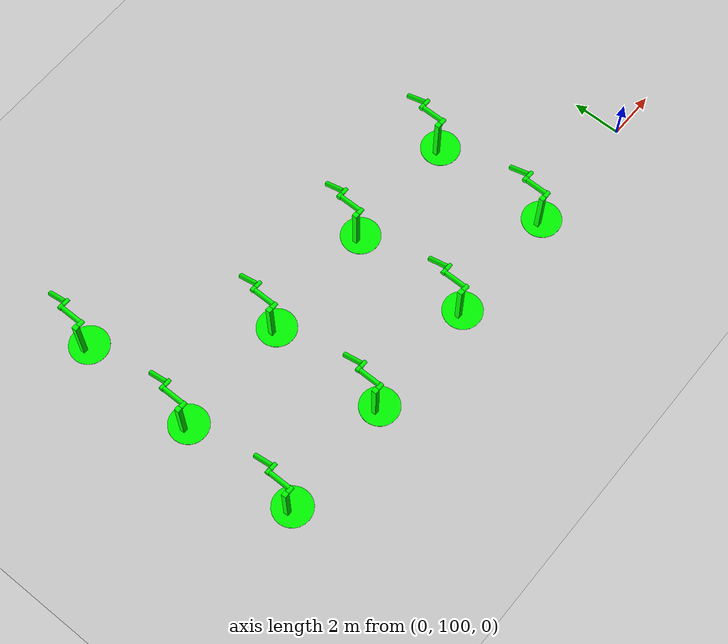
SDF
<sdf version="1.6">
 <world name="double_pendulums">
  <model name="ground_plane">
   <static>true</static>
   <link name="link">
    <collision name="collision">
     <geometry><plane><normal>0 0 1</normal><size>100 100</size></plane></geometry>
    </collision>
    <visual name="visual">
     <geometry><plane><normal>0 0 1</normal><size>100 100</size></plane></geometry>
     <material>
      <ambient>0.8 0.8 0.8 1</ambient>
      <diffuse>0.8 0.8 0.8 1</diffuse>
      <specular>0.8 0.8 0.8 1</specular>
     </material>
    </visual>
   </link>
  </model>
  <model name="dbl_pendulum_506">
   <pose>-20 100 0 0 0 0</pose>
   <link name="base">
    <inertial><mass>100</mass></inertial>
    <visual name="vis_plate_on_ground">
     <pose>0 0 0.01 0 0 0</pose>
     <geometry><cylinder><radius>0.8</radius><length>0.02</length></cylinder></geometry>
     <material><ambient>0 1 0 1</ambient><diffuse>0 1 0 1</diffuse><specular>0 1 0 1</specular></material>
    </visual>
    <visual name="vis_pole">
     <pose>-0.275 0 1.1 0 0 0</pose>
     <geometry><box><size>0.2 0.2 2.2</size></box></geometry>
     <material><ambient>0 1 0 1</ambient><diffuse>0 1 0 1</diffuse><specular>0 1 0 1</specular></material>
    </visual>
    <collision name="col_plate_on_ground">
     <pose>0 0 0.01 0 0 0</pose>
     <geometry><cylinder><radius>0.8</radius><length>0.02</length></cylinder></geometry>
    </collision>
    <collision name="col_pole">
     <pose>-0.275 0 1.1 0 0 0</pose>
     <geometry><box><size>0.2 0.2 2.2</size></box></geometry>
    </collision>
   </link>
   <link name="upper_link">
    <pose>0 0 2.1 -1.5708 0 0</pose>
    <inertial><pose>0 0 0.5 0 0 0</pose></inertial>
    <visual name="vis_upper_joint">
     <pose>-0.05 0 0 0 1.5708 0</pose>
     <geometry><cylinder><radius>0.1</radius><length>0.3</length></cylinder></geometry>
     <material><ambient>0 1 0 1</ambient><diffuse>0 1 0 1</diffuse><specular>0 1 0 1</specular></material>
    </visual>
    <visual name="vis_lower_joint">
     <pose>0 0 1.0 0 1.5708 0</pose>
     <geometry><cylinder><radius>0.1</radius><length>0.2</length></cylinder></geometry>
     <material><ambient>0 1 0 1</ambient><diffuse>0 1 0 1</diffuse><specular>0 1 0 1</specular></material>
    </visual>
    <visual name="vis_cylinder">
     <pose>0 0 0.5 0 0 0</pose>
     <geometry><cylinder><radius>0.1</radius><length>0.9</length></cylinder></geometry>
     <material><ambient>0 1 0 1</ambient><diffuse>0 1 0 1</diffuse><specular>0 1 0 1</specular></material>
    </visual>
    <collision name="col_upper_joint">
     <pose>-0.05 0 0 0 1.5708 0</pose>
     <geometry><cylinder><radius>0.1</radius><length>0.3</length></cylinder></geometry>
    </collision>
    <collision name="col_lower_joint">
     <pose>0 0 1.0 0 1.5708 0</pose>
     <geometry><cylinder><radius>0.1</radius><length>0.2</length></cylinder></geometry>
    </collision>
    <collision name="col_cylinder">
     <pose>0 0 0.5 0 0 0</pose>
     <geometry><cylinder><radius>0.1</radius><length>0.9</length></cylinder></geometry>
    </collision>
   </link>
   <link name="lower_link">
    <pose>0.25 1.0 2.1 -2 0 0</pose>
    <inertial><pose>0 0 0.5 0 0 0</pose></inertial>
    <visual name="vis_lower_joint">
     <pose>0 0 0 0 1.5708 0</pose>
     <geometry><cylinder><radius>0.08</radius><length>0.3</length></cylinder></geometry>
     <material><ambient>0 1 0 1</ambient><diffuse>0 1 0 1</diffuse><specular>0 1 0 1</specular></material>
    </visual>
    <visual name="vis_cylinder">
     <pose>0 0 0.5 0 0 0</pose>
     <geometry><cylinder><radius>0.1</radius><length>0.9</length></cylinder></geometry>
     <material><ambient>0 1 0 1</ambient><diffuse>0 1 0 1</diffuse><specular>0 1 0 1</specular></material>
    </visual>
    <collision name="col_lower_joint">
     <pose>0 0 0 0 1.5708 0</pose>
     <geometry><cylinder><radius>0.08</radius><length>0.3</length></cylinder></geometry>
    </collision>
    <collision name="col_cylinder">
     <pose>0 0 0.5 0 0 0</pose>
     <geometry><cylinder><radius>0.1</radius><length>0.9</length></cylinder></geometry>
    </collision>
   </link>
   <joint name="upper_joint" type="revolute">
    <parent>base</parent>
    <child>upper_link</child>
    <axis><xyz>1.0 0 0</xyz></axis>
   </joint>
   <joint name="lower_joint" type="revolute">
    <parent>upper_link</parent>
    <child>lower_link</child>
    <axis><xyz>1.0 0 0</xyz></axis>
   </joint>
  </model>
  <model name="dbl_pendulum_507">
   <pose>-15 100 0 0 0 0</pose>
   <link name="base">
    <inertial><mass>100</mass></inertial>
    <visual name="vis_plate_on_ground">
     <pose>0 0 0.01 0 0 0</pose>
     <geometry><cylinder><radius>0.8</radius><length>0.02</length></cylinder></geometry>
     <material><ambient>0 1 0 1</ambient><diffuse>0 1 0 1</diffuse><specular>0 1 0 1</specular></material>
    </visual>
    <visual name="vis_pole">
     <pose>-0.275 0 1.1 0 0 0</pose>
     <geometry><box><size>0.2 0.2 2.2</size></box></geometry>
     <material><ambient>0 1 0 1</ambient><diffuse>0 1 0 1</diffuse><specular>0 1 0 1</specular></material>
    </visual>
    <collision name="col_plate_on_ground">
     <pose>0 0 0.01 0 0 0</pose>
     <geometry><cylinder><radius>0.8</radius><length>0.02</length></cylinder></geometry>
    </collision>
    <collision name="col_pole">
     <pose>-0.275 0 1.1 0 0 0</pose>
     <geometry><box><size>0.2 0.2 2.2</size></box></geometry>
    </collision>
   </link>
   <link name="upper_link">
    <pose>0 0 2.1 -1.5708 0 0</pose>
    <inertial><pose>0 0 0.5 0 0 0</pose></inertial>
    <visual name="vis_upper_joint">
     <pose>-0.05 0 0 0 1.5708 0</pose>
     <geometry><cylinder><radius>0.1</radius><length>0.3</length></cylinder></geometry>
     <material><ambient>0 1 0 1</ambient><diffuse>0 1 0 1</diffuse><specular>0 1 0 1</specular></material>
    </visual>
    <visual name="vis_lower_joint">
     <pose>0 0 1.0 0 1.5708 0</pose>
     <geometry><cylinder><radius>0.1</radius><length>0.2</length></cylinder></geometry>
     <material><ambient>0 1 0 1</ambient><diffuse>0 1 0 1</diffuse><specular>0 1 0 1</specular></material>
    </visual>
    <visual name="vis_cylinder">
     <pose>0 0 0.5 0 0 0</pose>
     <geometry><cylinder><radius>0.1</radius><length>0.9</length></cylinder></geometry>
     <material><ambient>0 1 0 1</ambient><diffuse>0 1 0 1</diffuse><specular>0 1 0 1</specular></material>
    </visual>
    <collision name="col_upper_joint">
     <pose>-0.05 0 0 0 1.5708 0</pose>
     <geometry><cylinder><radius>0.1</radius><length>0.3</length></cylinder></geometry>
    </collision>
    <collision name="col_lower_joint">
     <pose>0 0 1.0 0 1.5708 0</pose>
     <geometry><cylinder><radius>0.1</radius><length>0.2</length></cylinder></geometry>
    </collision>
    <collision name="col_cylinder">
     <pose>0 0 0.5 0 0 0</pose>
     <geometry><cylinder><radius>0.1</radius><length>0.9</length></cylinder></geometry>
    </collision>
   </link>
   <link name="lower_link">
    <pose>0.25 1.0 2.1 -2 0 0</pose>
    <inertial><pose>0 0 0.5 0 0 0</pose></inertial>
    <visual name="vis_lower_joint">
     <pose>0 0 0 0 1.5708 0</pose>
     <geometry><cylinder><radius>0.08</radius><length>0.3</length></cylinder></geometry>
     <material><ambient>0 1 0 1</ambient><diffuse>0 1 0 1</diffuse><specular>0 1 0 1</specular></material>
    </visual>
    <visual name="vis_cylinder">
     <pose>0 0 0.5 0 0 0</pose>
     <geometry><cylinder><radius>0.1</radius><length>0.9</length></cylinder></geometry>
     <material><ambient>0 1 0 1</ambient><diffuse>0 1 0 1</diffuse><specular>0 1 0 1</specular></material>
    </visual>
    <collision name="col_lower_joint">
     <pose>0 0 0 0 1.5708 0</pose>
     <geometry><cylinder><radius>0.08</radius><length>0.3</length></cylinder></geometry>
    </collision>
    <collision name="col_cylinder">
     <pose>0 0 0.5 0 0 0</pose>
     <geometry><cylinder><radius>0.1</radius><length>0.9</length></cylinder></geometry>
    </collision>
   </link>
   <joint name="upper_joint" type="revolute">
    <parent>base</parent>
    <child>upper_link</child>
    <axis><xyz>1.0 0 0</xyz></axis>
   </joint>
   <joint name="lower_joint" type="revolute">
    <parent>upper_link</parent>
    <child>lower_link</child>
    <axis><xyz>1.0 0 0</xyz></axis>
   </joint>
  </model>
  <model name="dbl_pendulum_508">
   <pose>-10 100 0 0 0 0</pose>
   <link name="base">
    <inertial><mass>100</mass></inertial>
    <visual name="vis_plate_on_ground">
     <pose>0 0 0.01 0 0 0</pose>
     <geometry><cylinder><radius>0.8</radius><length>0.02</length></cylinder></geometry>
     <material><ambient>0 1 0 1</ambient><diffuse>0 1 0 1</diffuse><specular>0 1 0 1</specular></material>
    </visual>
    <visual name="vis_pole">
     <pose>-0.275 0 1.1 0 0 0</pose>
     <geometry><box><size>0.2 0.2 2.2</size></box></geometry>
     <material><ambient>0 1 0 1</ambient><diffuse>0 1 0 1</diffuse><specular>0 1 0 1</specular></material>
    </visual>
    <collision name="col_plate_on_ground">
     <pose>0 0 0.01 0 0 0</pose>
     <geometry><cylinder><radius>0.8</radius><length>0.02</length></cylinder></geometry>
    </collision>
    <collision name="col_pole">
     <pose>-0.275 0 1.1 0 0 0</pose>
     <geometry><box><size>0.2 0.2 2.2</size></box></geometry>
    </collision>
   </link>
   <link name="upper_link">
    <pose>0 0 2.1 -1.5708 0 0</pose>
    <inertial><pose>0 0 0.5 0 0 0</pose></inertial>
    <visual name="vis_upper_joint">
     <pose>-0.05 0 0 0 1.5708 0</pose>
     <geometry><cylinder><radius>0.1</radius><length>0.3</length></cylinder></geometry>
     <material><ambient>0 1 0 1</ambient><diffuse>0 1 0 1</diffuse><specular>0 1 0 1</specular></material>
    </visual>
    <visual name="vis_lower_joint">
     <pose>0 0 1.0 0 1.5708 0</pose>
     <geometry><cylinder><radius>0.1</radius><length>0.2</length></cylinder></geometry>
     <material><ambient>0 1 0 1</ambient><diffuse>0 1 0 1</diffuse><specular>0 1 0 1</specular></material>
    </visual>
    <visual name="vis_cylinder">
     <pose>0 0 0.5 0 0 0</pose>
     <geometry><cylinder><radius>0.1</radius><length>0.9</length></cylinder></geometry>
     <material><ambient>0 1 0 1</ambient><diffuse>0 1 0 1</diffuse><specular>0 1 0 1</specular></material>
    </visual>
    <collision name="col_upper_joint">
     <pose>-0.05 0 0 0 1.5708 0</pose>
     <geometry><cylinder><radius>0.1</radius><length>0.3</length></cylinder></geometry>
    </collision>
    <collision name="col_lower_joint">
     <pose>0 0 1.0 0 1.5708 0</pose>
     <geometry><cylinder><radius>0.1</radius><length>0.2</length></cylinder></geometry>
    </collision>
    <collision name="col_cylinder">
     <pose>0 0 0.5 0 0 0</pose>
     <geometry><cylinder><radius>0.1</radius><length>0.9</length></cylinder></geometry>
    </collision>
   </link>
   <link name="lower_link">
    <pose>0.25 1.0 2.1 -2 0 0</pose>
    <inertial><pose>0 0 0.5 0 0 0</pose></inertial>
    <visual name="vis_lower_joint">
     <pose>0 0 0 0 1.5708 0</pose>
     <geometry><cylinder><radius>0.08</radius><length>0.3</length></cylinder></geometry>
     <material><ambient>0 1 0 1</ambient><diffuse>0 1 0 1</diffuse><specular>0 1 0 1</specular></material>
    </visual>
    <visual name="vis_cylinder">
     <pose>0 0 0.5 0 0 0</pose>
     <geometry><cylinder><radius>0.1</radius><length>0.9</length></cylinder></geometry>
     <material><ambient>0 1 0 1</ambient><diffuse>0 1 0 1</diffuse><specular>0 1 0 1</specular></material>
    </visual>
    <collision name="col_lower_joint">
     <pose>0 0 0 0 1.5708 0</pose>
     <geometry><cylinder><radius>0.08</radius><length>0.3</length></cylinder></geometry>
    </collision>
    <collision name="col_cylinder">
     <pose>0 0 0.5 0 0 0</pose>
     <geometry><cylinder><radius>0.1</radius><length>0.9</length></cylinder></geometry>
    </collision>
   </link>
   <joint name="upper_joint" type="revolute">
    <parent>base</parent>
    <child>upper_link</child>
    <axis><xyz>1.0 0 0</xyz></axis>
   </joint>
   <joint name="lower_joint" type="revolute">
    <parent>upper_link</parent>
    <child>lower_link</child>
    <axis><xyz>1.0 0 0</xyz></axis>
   </joint>
  </model>
  <model name="dbl_pendulum_509">
   <pose>-5 100 0 0 0 0</pose>
   <link name="base">
    <inertial><mass>100</mass></inertial>
    <visual name="vis_plate_on_ground">
     <pose>0 0 0.01 0 0 0</pose>
     <geometry><cylinder><radius>0.8</radius><length>0.02</length></cylinder></geometry>
     <material><ambient>0 1 0 1</ambient><diffuse>0 1 0 1</diffuse><specular>0 1 0 1</specular></material>
    </visual>
    <visual name="vis_pole">
     <pose>-0.275 0 1.1 0 0 0</pose>
     <geometry><box><size>0.2 0.2 2.2</size></box></geometry>
     <material><ambient>0 1 0 1</ambient><diffuse>0 1 0 1</diffuse><specular>0 1 0 1</specular></material>
    </visual>
    <collision name="col_plate_on_ground">
     <pose>0 0 0.01 0 0 0</pose>
     <geometry><cylinder><radius>0.8</radius><length>0.02</length></cylinder></geometry>
    </collision>
    <collision name="col_pole">
     <pose>-0.275 0 1.1 0 0 0</pose>
     <geometry><box><size>0.2 0.2 2.2</size></box></geometry>
    </collision>
   </link>
   <link name="upper_link">
    <pose>0 0 2.1 -1.5708 0 0</pose>
    <inertial><pose>0 0 0.5 0 0 0</pose></inertial>
    <visual name="vis_upper_joint">
     <pose>-0.05 0 0 0 1.5708 0</pose>
     <geometry><cylinder><radius>0.1</radius><length>0.3</length></cylinder></geometry>
     <material><ambient>0 1 0 1</ambient><diffuse>0 1 0 1</diffuse><specular>0 1 0 1</specular></material>
    </visual>
    <visual name="vis_lower_joint">
     <pose>0 0 1.0 0 1.5708 0</pose>
     <geometry><cylinder><radius>0.1</radius><length>0.2</length></cylinder></geometry>
     <material><ambient>0 1 0 1</ambient><diffuse>0 1 0 1</diffuse><specular>0 1 0 1</specular></material>
    </visual>
    <visual name="vis_cylinder">
     <pose>0 0 0.5 0 0 0</pose>
     <geometry><cylinder><radius>0.1</radius><length>0.9</length></cylinder></geometry>
     <material><ambient>0 1 0 1</ambient><diffuse>0 1 0 1</diffuse><specular>0 1 0 1</specular></material>
    </visual>
    <collision name="col_upper_joint">
     <pose>-0.05 0 0 0 1.5708 0</pose>
     <geometry><cylinder><radius>0.1</radius><length>0.3</length></cylinder></geometry>
    </collision>
    <collision name="col_lower_joint">
     <pose>0 0 1.0 0 1.5708 0</pose>
     <geometry><cylinder><radius>0.1</radius><length>0.2</length></cylinder></geometry>
    </collision>
    <collision name="col_cylinder">
     <pose>0 0 0.5 0 0 0</pose>
     <geometry><cylinder><radius>0.1</radius><length>0.9</length></cylinder></geometry>
    </collision>
   </link>
   <link name="lower_link">
    <pose>0.25 1.0 2.1 -2 0 0</pose>
    <inertial><pose>0 0 0.5 0 0 0</pose></inertial>
    <visual name="vis_lower_joint">
     <pose>0 0 0 0 1.5708 0</pose>
     <geometry><cylinder><radius>0.08</radius><length>0.3</length></cylinder></geometry>
     <material><ambient>0 1 0 1</ambient><diffuse>0 1 0 1</diffuse><specular>0 1 0 1</specular></material>
    </visual>
    <visual name="vis_cylinder">
     <pose>0 0 0.5 0 0 0</pose>
     <geometry><cylinder><radius>0.1</radius><length>0.9</length></cylinder></geometry>
     <material><ambient>0 1 0 1</ambient><diffuse>0 1 0 1</diffuse><specular>0 1 0 1</specular></material>
    </visual>
    <collision name="col_lower_joint">
     <pose>0 0 0 0 1.5708 0</pose>
     <geometry><cylinder><radius>0.08</radius><length>0.3</length></cylinder></geometry>
    </collision>
    <collision name="col_cylinder">
     <pose>0 0 0.5 0 0 0</pose>
     <geometry><cylinder><radius>0.1</radius><length>0.9</length></cylinder></geometry>
    </collision>
   </link>
   <joint name="upper_joint" type="revolute">
    <parent>base</parent>
    <child>upper_link</child>
    <axis><xyz>1.0 0 0</xyz></axis>
   </joint>
   <joint name="lower_joint" type="revolute">
    <parent>upper_link</parent>
    <child>lower_link</child>
    <axis><xyz>1.0 0 0</xyz></axis>
   </joint>
  </model>
  <model name="dbl_pendulum_531">
   <pose>-20 105 0 0 0 0</pose>
   <link name="base">
    <inertial><mass>100</mass></inertial>
    <visual name="vis_plate_on_ground">
     <pose>0 0 0.01 0 0 0</pose>
     <geometry><cylinder><radius>0.8</radius><length>0.02</length></cylinder></geometry>
     <material><ambient>0 1 0 1</ambient><diffuse>0 1 0 1</diffuse><specular>0 1 0 1</specular></material>
    </visual>
    <visual name="vis_pole">
     <pose>-0.275 0 1.1 0 0 0</pose>
     <geometry><box><size>0.2 0.2 2.2</size></box></geometry>
     <material><ambient>0 1 0 1</ambient><diffuse>0 1 0 1</diffuse><specular>0 1 0 1</specular></material>
    </visual>
    <collision name="col_plate_on_ground">
     <pose>0 0 0.01 0 0 0</pose>
     <geometry><cylinder><radius>0.8</radius><length>0.02</length></cylinder></geometry>
    </collision>
    <collision name="col_pole">
     <pose>-0.275 0 1.1 0 0 0</pose>
     <geometry><box><size>0.2 0.2 2.2</size></box></geometry>
    </collision>
   </link>
   <link name="upper_link">
    <pose>0 0 2.1 -1.5708 0 0</pose>
    <inertial><pose>0 0 0.5 0 0 0</pose></inertial>
    <visual name="vis_upper_joint">
     <pose>-0.05 0 0 0 1.5708 0</pose>
     <geometry><cylinder><radius>0.1</radius><length>0.3</length></cylinder></geometry>
     <material><ambient>0 1 0 1</ambient><diffuse>0 1 0 1</diffuse><specular>0 1 0 1</specular></material>
    </visual>
    <visual name="vis_lower_joint">
     <pose>0 0 1.0 0 1.5708 0</pose>
     <geometry><cylinder><radius>0.1</radius><length>0.2</length></cylinder></geometry>
     <material><ambient>0 1 0 1</ambient><diffuse>0 1 0 1</diffuse><specular>0 1 0 1</specular></material>
    </visual>
    <visual name="vis_cylinder">
     <pose>0 0 0.5 0 0 0</pose>
     <geometry><cylinder><radius>0.1</radius><length>0.9</length></cylinder></geometry>
     <material><ambient>0 1 0 1</ambient><diffuse>0 1 0 1</diffuse><specular>0 1 0 1</specular></material>
    </visual>
    <collision name="col_upper_joint">
     <pose>-0.05 0 0 0 1.5708 0</pose>
     <geometry><cylinder><radius>0.1</radius><length>0.3</length></cylinder></geometry>
    </collision>
    <collision name="col_lower_joint">
     <pose>0 0 1.0 0 1.5708 0</pose>
     <geometry><cylinder><radius>0.1</radius><length>0.2</length></cylinder></geometry>
    </collision>
    <collision name="col_cylinder">
     <pose>0 0 0.5 0 0 0</pose>
     <geometry><cylinder><radius>0.1</radius><length>0.9</length></cylinder></geometry>
    </collision>
   </link>
   <link name="lower_link">
    <pose>0.25 1.0 2.1 -2 0 0</pose>
    <inertial><pose>0 0 0.5 0 0 0</pose></inertial>
    <visual name="vis_lower_joint">
     <pose>0 0 0 0 1.5708 0</pose>
     <geometry><cylinder><radius>0.08</radius><length>0.3</length></cylinder></geometry>
     <material><ambient>0 1 0 1</ambient><diffuse>0 1 0 1</diffuse><specular>0 1 0 1</specular></material>
    </visual>
    <visual name="vis_cylinder">
     <pose>0 0 0.5 0 0 0</pose>
     <geometry><cylinder><radius>0.1</radius><length>0.9</length></cylinder></geometry>
     <material><ambient>0 1 0 1</ambient><diffuse>0 1 0 1</diffuse><specular>0 1 0 1</specular></material>
    </visual>
    <collision name="col_lower_joint">
     <pose>0 0 0 0 1.5708 0</pose>
     <geometry><cylinder><radius>0.08</radius><length>0.3</length></cylinder></geometry>
    </collision>
    <collision name="col_cylinder">
     <pose>0 0 0.5 0 0 0</pose>
     <geometry><cylinder><radius>0.1</radius><length>0.9</length></cylinder></geometry>
    </collision>
   </link>
   <joint name="upper_joint" type="revolute">
    <parent>base</parent>
    <child>upper_link</child>
    <axis><xyz>1.0 0 0</xyz></axis>
   </joint>
   <joint name="lower_joint" type="revolute">
    <parent>upper_link</parent>
    <child>lower_link</child>
    <axis><xyz>1.0 0 0</xyz></axis>
   </joint>
  </model>
  <model name="dbl_pendulum_532">
   <pose>-15 105 0 0 0 0</pose>
   <link name="base">
    <inertial><mass>100</mass></inertial>
    <visual name="vis_plate_on_ground">
     <pose>0 0 0.01 0 0 0</pose>
     <geometry><cylinder><radius>0.8</radius><length>0.02</length></cylinder></geometry>
     <material><ambient>0 1 0 1</ambient><diffuse>0 1 0 1</diffuse><specular>0 1 0 1</specular></material>
    </visual>
    <visual name="vis_pole">
     <pose>-0.275 0 1.1 0 0 0</pose>
     <geometry><box><size>0.2 0.2 2.2</size></box></geometry>
     <material><ambient>0 1 0 1</ambient><diffuse>0 1 0 1</diffuse><specular>0 1 0 1</specular></material>
    </visual>
    <collision name="col_plate_on_ground">
     <pose>0 0 0.01 0 0 0</pose>
     <geometry><cylinder><radius>0.8</radius><length>0.02</length></cylinder></geometry>
    </collision>
    <collision name="col_pole">
     <pose>-0.275 0 1.1 0 0 0</pose>
     <geometry><box><size>0.2 0.2 2.2</size></box></geometry>
    </collision>
   </link>
   <link name="upper_link">
    <pose>0 0 2.1 -1.5708 0 0</pose>
    <inertial><pose>0 0 0.5 0 0 0</pose></inertial>
    <visual name="vis_upper_joint">
     <pose>-0.05 0 0 0 1.5708 0</pose>
     <geometry><cylinder><radius>0.1</radius><length>0.3</length></cylinder></geometry>
     <material><ambient>0 1 0 1</ambient><diffuse>0 1 0 1</diffuse><specular>0 1 0 1</specular></material>
    </visual>
    <visual name="vis_lower_joint">
     <pose>0 0 1.0 0 1.5708 0</pose>
     <geometry><cylinder><radius>0.1</radius><length>0.2</length></cylinder></geometry>
     <material><ambient>0 1 0 1</ambient><diffuse>0 1 0 1</diffuse><specular>0 1 0 1</specular></material>
    </visual>
    <visual name="vis_cylinder">
     <pose>0 0 0.5 0 0 0</pose>
     <geometry><cylinder><radius>0.1</radius><length>0.9</length></cylinder></geometry>
     <material><ambient>0 1 0 1</ambient><diffuse>0 1 0 1</diffuse><specular>0 1 0 1</specular></material>
    </visual>
    <collision name="col_upper_joint">
     <pose>-0.05 0 0 0 1.5708 0</pose>
     <geometry><cylinder><radius>0.1</radius><length>0.3</length></cylinder></geometry>
    </collision>
    <collision name="col_lower_joint">
     <pose>0 0 1.0 0 1.5708 0</pose>
     <geometry><cylinder><radius>0.1</radius><length>0.2</length></cylinder></geometry>
    </collision>
    <collision name="col_cylinder">
     <pose>0 0 0.5 0 0 0</pose>
     <geometry><cylinder><radius>0.1</radius><length>0.9</length></cylinder></geometry>
    </collision>
   </link>
   <link name="lower_link">
    <pose>0.25 1.0 2.1 -2 0 0</pose>
    <inertial><pose>0 0 0.5 0 0 0</pose></inertial>
    <visual name="vis_lower_joint">
     <pose>0 0 0 0 1.5708 0</pose>
     <geometry><cylinder><radius>0.08</radius><length>0.3</length></cylinder></geometry>
     <material><ambient>0 1 0 1</ambient><diffuse>0 1 0 1</diffuse><specular>0 1 0 1</specular></material>
    </visual>
    <visual name="vis_cylinder">
     <pose>0 0 0.5 0 0 0</pose>
     <geometry><cylinder><radius>0.1</radius><length>0.9</length></cylinder></geometry>
     <material><ambient>0 1 0 1</ambient><diffuse>0 1 0 1</diffuse><specular>0 1 0 1</specular></material>
    </visual>
    <collision name="col_lower_joint">
     <pose>0 0 0 0 1.5708 0</pose>
     <geometry><cylinder><radius>0.08</radius><length>0.3</length></cylinder></geometry>
    </collision>
    <collision name="col_cylinder">
     <pose>0 0 0.5 0 0 0</pose>
     <geometry><cylinder><radius>0.1</radius><length>0.9</length></cylinder></geometry>
    </collision>
   </link>
   <joint name="upper_joint" type="revolute">
    <parent>base</parent>
    <child>upper_link</child>
    <axis><xyz>1.0 0 0</xyz></axis>
   </joint>
   <joint name="lower_joint" type="revolute">
    <parent>upper_link</parent>
    <child>lower_link</child>
    <axis><xyz>1.0 0 0</xyz></axis>
   </joint>
  </model>
  <model name="dbl_pendulum_533">
   <pose>-10 105 0 0 0 0</pose>
   <link name="base">
    <inertial><mass>100</mass></inertial>
    <visual name="vis_plate_on_ground">
     <pose>0 0 0.01 0 0 0</pose>
     <geometry><cylinder><radius>0.8</radius><length>0.02</length></cylinder></geometry>
     <material><ambient>0 1 0 1</ambient><diffuse>0 1 0 1</diffuse><specular>0 1 0 1</specular></material>
    </visual>
    <visual name="vis_pole">
     <pose>-0.275 0 1.1 0 0 0</pose>
     <geometry><box><size>0.2 0.2 2.2</size></box></geometry>
     <material><ambient>0 1 0 1</ambient><diffuse>0 1 0 1</diffuse><specular>0 1 0 1</specular></material>
    </visual>
    <collision name="col_plate_on_ground">
     <pose>0 0 0.01 0 0 0</pose>
     <geometry><cylinder><radius>0.8</radius><length>0.02</length></cylinder></geometry>
    </collision>
    <collision name="col_pole">
     <pose>-0.275 0 1.1 0 0 0</pose>
     <geometry><box><size>0.2 0.2 2.2</size></box></geometry>
    </collision>
   </link>
   <link name="upper_link">
    <pose>0 0 2.1 -1.5708 0 0</pose>
    <inertial><pose>0 0 0.5 0 0 0</pose></inertial>
    <visual name="vis_upper_joint">
     <pose>-0.05 0 0 0 1.5708 0</pose>
     <geometry><cylinder><radius>0.1</radius><length>0.3</length></cylinder></geometry>
     <material><ambient>0 1 0 1</ambient><diffuse>0 1 0 1</diffuse><specular>0 1 0 1</specular></material>
    </visual>
    <visual name="vis_lower_joint">
     <pose>0 0 1.0 0 1.5708 0</pose>
     <geometry><cylinder><radius>0.1</radius><length>0.2</length></cylinder></geometry>
     <material><ambient>0 1 0 1</ambient><diffuse>0 1 0 1</diffuse><specular>0 1 0 1</specular></material>
    </visual>
    <visual name="vis_cylinder">
     <pose>0 0 0.5 0 0 0</pose>
     <geometry><cylinder><radius>0.1</radius><length>0.9</length></cylinder></geometry>
     <material><ambient>0 1 0 1</ambient><diffuse>0 1 0 1</diffuse><specular>0 1 0 1</specular></material>
    </visual>
    <collision name="col_upper_joint">
     <pose>-0.05 0 0 0 1.5708 0</pose>
     <geometry><cylinder><radius>0.1</radius><length>0.3</length></cylinder></geometry>
    </collision>
    <collision name="col_lower_joint">
     <pose>0 0 1.0 0 1.5708 0</pose>
     <geometry><cylinder><radius>0.1</radius><length>0.2</length></cylinder></geometry>
    </collision>
    <collision name="col_cylinder">
     <pose>0 0 0.5 0 0 0</pose>
     <geometry><cylinder><radius>0.1</radius><length>0.9</length></cylinder></geometry>
    </collision>
   </link>
   <link name="lower_link">
    <pose>0.25 1.0 2.1 -2 0 0</pose>
    <inertial><pose>0 0 0.5 0 0 0</pose></inertial>
    <visual name="vis_lower_joint">
     <pose>0 0 0 0 1.5708 0</pose>
     <geometry><cylinder><radius>0.08</radius><length>0.3</length></cylinder></geometry>
     <material><ambient>0 1 0 1</ambient><diffuse>0 1 0 1</diffuse><specular>0 1 0 1</specular></material>
    </visual>
    <visual name="vis_cylinder">
     <pose>0 0 0.5 0 0 0</pose>
     <geometry><cylinder><radius>0.1</radius><length>0.9</length></cylinder></geometry>
     <material><ambient>0 1 0 1</ambient><diffuse>0 1 0 1</diffuse><specular>0 1 0 1</specular></material>
    </visual>
    <collision name="col_lower_joint">
     <pose>0 0 0 0 1.5708 0</pose>
     <geometry><cylinder><radius>0.08</radius><length>0.3</length></cylinder></geometry>
    </collision>
    <collision name="col_cylinder">
     <pose>0 0 0.5 0 0 0</pose>
     <geometry><cylinder><radius>0.1</radius><length>0.9</length></cylinder></geometry>
    </collision>
   </link>
   <joint name="upper_joint" type="revolute">
    <parent>base</parent>
    <child>upper_link</child>
    <axis><xyz>1.0 0 0</xyz></axis>
   </joint>
   <joint name="lower_joint" type="revolute">
    <parent>upper_link</parent>
    <child>lower_link</child>
    <axis><xyz>1.0 0 0</xyz></axis>
   </joint>
  </model>
  <model name="dbl_pendulum_534">
   <pose>-5 105 0 0 0 0</pose>
   <link name="base">
    <inertial><mass>100</mass></inertial>
    <visual name="vis_plate_on_ground">
     <pose>0 0 0.01 0 0 0</pose>
     <geometry><cylinder><radius>0.8</radius><length>0.02</length></cylinder></geometry>
     <material><ambient>0 1 0 1</ambient><diffuse>0 1 0 1</diffuse><specular>0 1 0 1</specular></material>
    </visual>
    <visual name="vis_pole">
     <pose>-0.275 0 1.1 0 0 0</pose>
     <geometry><box><size>0.2 0.2 2.2</size></box></geometry>
     <material><ambient>0 1 0 1</ambient><diffuse>0 1 0 1</diffuse><specular>0 1 0 1</specular></material>
    </visual>
    <collision name="col_plate_on_ground">
     <pose>0 0 0.01 0 0 0</pose>
     <geometry><cylinder><radius>0.8</radius><length>0.02</length></cylinder></geometry>
    </collision>
    <collision name="col_pole">
     <pose>-0.275 0 1.1 0 0 0</pose>
     <geometry><box><size>0.2 0.2 2.2</size></box></geometry>
    </collision>
   </link>
   <link name="upper_link">
    <pose>0 0 2.1 -1.5708 0 0</pose>
    <inertial><pose>0 0 0.5 0 0 0</pose></inertial>
    <visual name="vis_upper_joint">
     <pose>-0.05 0 0 0 1.5708 0</pose>
     <geometry><cylinder><radius>0.1</radius><length>0.3</length></cylinder></geometry>
     <material><ambient>0 1 0 1</ambient><diffuse>0 1 0 1</diffuse><specular>0 1 0 1</specular></material>
    </visual>
    <visual name="vis_lower_joint">
     <pose>0 0 1.0 0 1.5708 0</pose>
     <geometry><cylinder><radius>0.1</radius><length>0.2</length></cylinder></geometry>
     <material><ambient>0 1 0 1</ambient><diffuse>0 1 0 1</diffuse><specular>0 1 0 1</specular></material>
    </visual>
    <visual name="vis_cylinder">
     <pose>0 0 0.5 0 0 0</pose>
     <geometry><cylinder><radius>0.1</radius><length>0.9</length></cylinder></geometry>
     <material><ambient>0 1 0 1</ambient><diffuse>0 1 0 1</diffuse><specular>0 1 0 1</specular></material>
    </visual>
    <collision name="col_upper_joint">
     <pose>-0.05 0 0 0 1.5708 0</pose>
     <geometry><cylinder><radius>0.1</radius><length>0.3</length></cylinder></geometry>
    </collision>
    <collision name="col_lower_joint">
     <pose>0 0 1.0 0 1.5708 0</pose>
     <geometry><cylinder><radius>0.1</radius><length>0.2</length></cylinder></geometry>
    </collision>
    <collision name="col_cylinder">
     <pose>0 0 0.5 0 0 0</pose>
     <geometry><cylinder><radius>0.1</radius><length>0.9</length></cylinder></geometry>
    </collision>
   </link>
   <link name="lower_link">
    <pose>0.25 1.0 2.1 -2 0 0</pose>
    <inertial><pose>0 0 0.5 0 0 0</pose></inertial>
    <visual name="vis_lower_joint">
     <pose>0 0 0 0 1.5708 0</pose>
     <geometry><cylinder><radius>0.08</radius><length>0.3</length></cylinder></geometry>
     <material><ambient>0 1 0 1</ambient><diffuse>0 1 0 1</diffuse><specular>0 1 0 1</specular></material>
    </visual>
    <visual name="vis_cylinder">
     <pose>0 0 0.5 0 0 0</pose>
     <geometry><cylinder><radius>0.1</radius><length>0.9</length></cylinder></geometry>
     <material><ambient>0 1 0 1</ambient><diffuse>0 1 0 1</diffuse><specular>0 1 0 1</specular></material>
    </visual>
    <collision name="col_lower_joint">
     <pose>0 0 0 0 1.5708 0</pose>
     <geometry><cylinder><radius>0.08</radius><length>0.3</length></cylinder></geometry>
    </collision>
    <collision name="col_cylinder">
     <pose>0 0 0.5 0 0 0</pose>
     <geometry><cylinder><radius>0.1</radius><length>0.9</length></cylinder></geometry>
    </collision>
   </link>
   <joint name="upper_joint" type="revolute">
    <parent>base</parent>
    <child>upper_link</child>
    <axis><xyz>1.0 0 0</xyz></axis>
   </joint>
   <joint name="lower_joint" type="revolute">
    <parent>upper_link</parent>
    <child>lower_link</child>
    <axis><xyz>1.0 0 0</xyz></axis>
   </joint>
  </model>
  <model name="dbl_pendulum_556">
   <pose>-20 110 0 0 0 0</pose>
   <link name="base">
    <inertial><mass>100</mass></inertial>
    <visual name="vis_plate_on_ground">
     <pose>0 0 0.01 0 0 0</pose>
     <geometry><cylinder><radius>0.8</radius><length>0.02</length></cylinder></geometry>
     <material><ambient>0 1 0 1</ambient><diffuse>0 1 0 1</diffuse><specular>0 1 0 1</specular></material>
    </visual>
    <visual name="vis_pole">
     <pose>-0.275 0 1.1 0 0 0</pose>
     <geometry><box><size>0.2 0.2 2.2</size></box></geometry>
     <material><ambient>0 1 0 1</ambient><diffuse>0 1 0 1</diffuse><specular>0 1 0 1</specular></material>
    </visual>
    <collision name="col_plate_on_ground">
     <pose>0 0 0.01 0 0 0</pose>
     <geometry><cylinder><radius>0.8</radius><length>0.02</length></cylinder></geometry>
    </collision>
    <collision name="col_pole">
     <pose>-0.275 0 1.1 0 0 0</pose>
     <geometry><box><size>0.2 0.2 2.2</size></box></geometry>
    </collision>
   </link>
   <link name="upper_link">
    <pose>0 0 2.1 -1.5708 0 0</pose>
    <inertial><pose>0 0 0.5 0 0 0</pose></inertial>
    <visual name="vis_upper_joint">
     <pose>-0.05 0 0 0 1.5708 0</pose>
     <geometry><cylinder><radius>0.1</radius><length>0.3</length></cylinder></geometry>
     <material><ambient>0 1 0 1</ambient><diffuse>0 1 0 1</diffuse><specular>0 1 0 1</specular></material>
    </visual>
    <visual name="vis_lower_joint">
     <pose>0 0 1.0 0 1.5708 0</pose>
     <geometry><cylinder><radius>0.1</radius><length>0.2</length></cylinder></geometry>
     <material><ambient>0 1 0 1</ambient><diffuse>0 1 0 1</diffuse><specular>0 1 0 1</specular></material>
    </visual>
    <visual name="vis_cylinder">
     <pose>0 0 0.5 0 0 0</pose>
     <geometry><cylinder><radius>0.1</radius><length>0.9</length></cylinder></geometry>
     <material><ambient>0 1 0 1</ambient><diffuse>0 1 0 1</diffuse><specular>0 1 0 1</specular></material>
    </visual>
    <collision name="col_upper_joint">
     <pose>-0.05 0 0 0 1.5708 0</pose>
     <geometry><cylinder><radius>0.1</radius><length>0.3</length></cylinder></geometry>
    </collision>
    <collision name="col_lower_joint">
     <pose>0 0 1.0 0 1.5708 0</pose>
     <geometry><cylinder><radius>0.1</radius><length>0.2</length></cylinder></geometry>
    </collision>
    <collision name="col_cylinder">
     <pose>0 0 0.5 0 0 0</pose>
     <geometry><cylinder><radius>0.1</radius><length>0.9</length></cylinder></geometry>
    </collision>
   </link>
   <link name="lower_link">
    <pose>0.25 1.0 2.1 -2 0 0</pose>
    <inertial><pose>0 0 0.5 0 0 0</pose></inertial>
    <visual name="vis_lower_joint">
     <pose>0 0 0 0 1.5708 0</pose>
     <geometry><cylinder><radius>0.08</radius><length>0.3</length></cylinder></geometry>
     <material><ambient>0 1 0 1</ambient><diffuse>0 1 0 1</diffuse><specular>0 1 0 1</specular></material>
    </visual>
    <visual name="vis_cylinder">
     <pose>0 0 0.5 0 0 0</pose>
     <geometry><cylinder><radius>0.1</radius><length>0.9</length></cylinder></geometry>
     <material><ambient>0 1 0 1</ambient><diffuse>0 1 0 1</diffuse><specular>0 1 0 1</specular></material>
    </visual>
    <collision name="col_lower_joint">
     <pose>0 0 0 0 1.5708 0</pose>
     <geometry><cylinder><radius>0.08</radius><length>0.3</length></cylinder></geometry>
    </collision>
    <collision name="col_cylinder">
     <pose>0 0 0.5 0 0 0</pose>
     <geometry><cylinder><radius>0.1</radius><length>0.9</length></cylinder></geometry>
    </collision>
   </link>
   <joint name="upper_joint" type="revolute">
    <parent>base</parent>
    <child>upper_link</child>
    <axis><xyz>1.0 0 0</xyz></axis>
   </joint>
   <joint name="lower_joint" type="revolute">
    <parent>upper_link</parent>
    <child>lower_link</child>
    <axis><xyz>1.0 0 0</xyz></axis>
   </joint>
  </model>
 </world>
</sdf>
